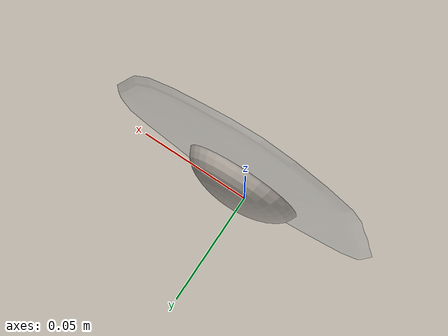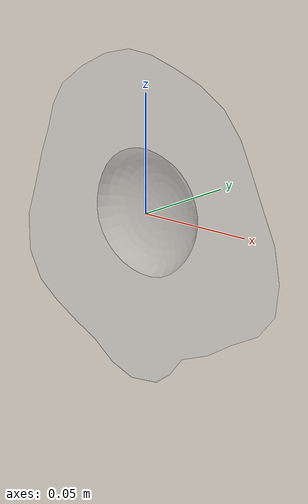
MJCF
<mujoco model="Egg_Cracked_19">
  <compiler autolimits="true" boundmass="0.01" angle="radian"/>
  <default>
    <default class="/">
      <default class="__VISUAL_MJT__">
        <geom contype="0" conaffinity="0" group="0"/>
      </default>
      <default class="__STRUCTURAL_MJT__">
        <geom contype="8" conaffinity="15" group="4" friction="0.90000000000000002 0.90000000000000002 0.001" solref="0.025000000000000001 1" solimp="0.998 0.998 0.001"/>
      </default>
      <default class="__DYNAMIC_MJT__">
        <geom contype="1" conaffinity="15" group="4" friction="0.90000000000000002 0.90000000000000002 0.001" solref="0.025000000000000001 1" solimp="0.998 0.998 0.001"/>
      </default>
    </default>
  </default>
  <asset>
    <texture name="Fried_Egg_White_Uncooked_Mat" type="2d" file="Fried_Egg_AlbedoTransparency.png"/>
    <material name="material_Fried_Egg_White_Uncooked_Mat" class="/" texture="Fried_Egg_White_Uncooked_Mat" specular="0.5" shininess="0.5" rgba="1 1 1 0.5"/>
    <texture name="Fried_Egg_Yolk_Mat" type="2d" file="Fried_Egg_AlbedoTransparency.png"/>
    <material name="material_Fried_Egg_Yolk_Mat" class="/" texture="Fried_Egg_Yolk_Mat" specular="0.5" shininess="0.5" rgba="1 1 1 1"/>
    <mesh name="Egg_Cracked_19_fried_egg_18_0" class="/" file="Egg_Cracked_19_fried_egg_18/Egg_Cracked_19_fried_egg_18_0.obj" scale="1 1 1"/>
    <mesh name="Egg_Cracked_19_fried_egg_18_1" class="/" file="Egg_Cracked_19_fried_egg_18/Egg_Cracked_19_fried_egg_18_1.obj" scale="1 1 1"/>
  </asset>
  <worldbody>
    <body name="Egg_Cracked_19">
      <joint name="Egg_Cracked_19_free" class="/" type="free" pos="0 0 0" axis="0 0 1" stiffness="0" range="0 0" armature="0" damping="0.10000000000000001" frictionloss="0"/>
      <body name="Egg_Cracked_19_fried_egg_18" pos="0.0034199999999999999 -0.01023 0.0023400000000000001" quat="1 0 0 0">
        <geom name="Egg_Cracked_19_fried_egg_18_0" class="__VISUAL_MJT__" type="mesh" material="material_Fried_Egg_White_Uncooked_Mat" shellinertia="false" mesh="Egg_Cracked_19_fried_egg_18_0"/>
        <geom name="Egg_Cracked_19_fried_egg_18_1" class="__VISUAL_MJT__" type="mesh" material="material_Fried_Egg_Yolk_Mat" shellinertia="false" mesh="Egg_Cracked_19_fried_egg_18_1"/>
        <geom name="Egg_Cracked_19_PrimitiveCollider_0" class="__DYNAMIC_MJT__" type="box" size="0.068092837929725647 0.010231256484985352 0.069975636899471283" rgba="0 1 0 1" pos="0.0034156590700149536 0.010231256484985352 -0.0023439750075340271" quat="1 0 0 0"/>
      </body>
    </body>
  </worldbody>
</mujoco>
